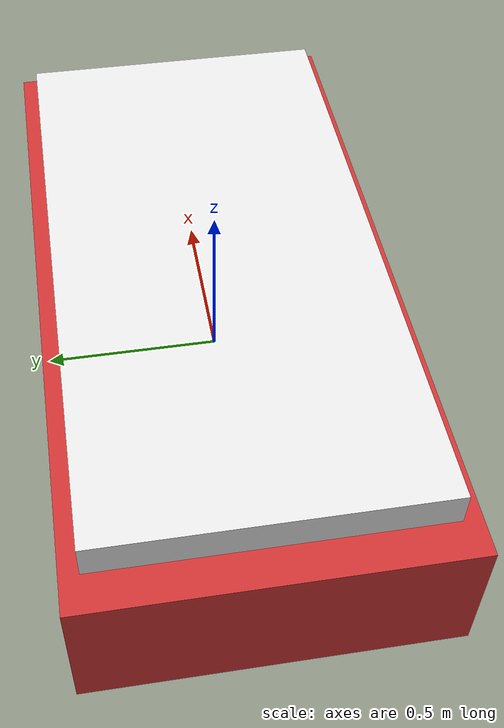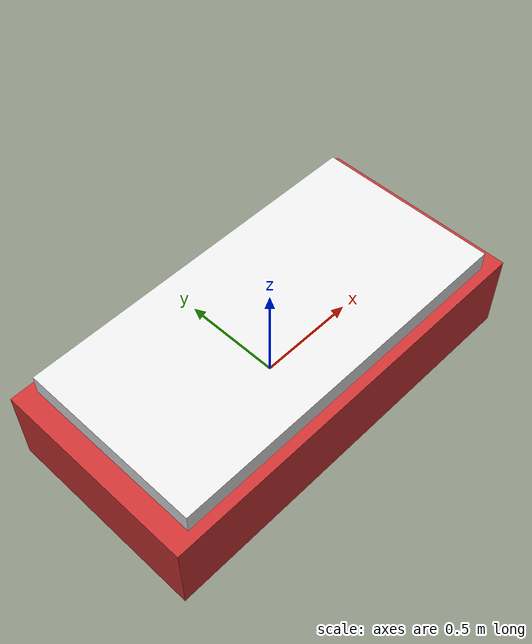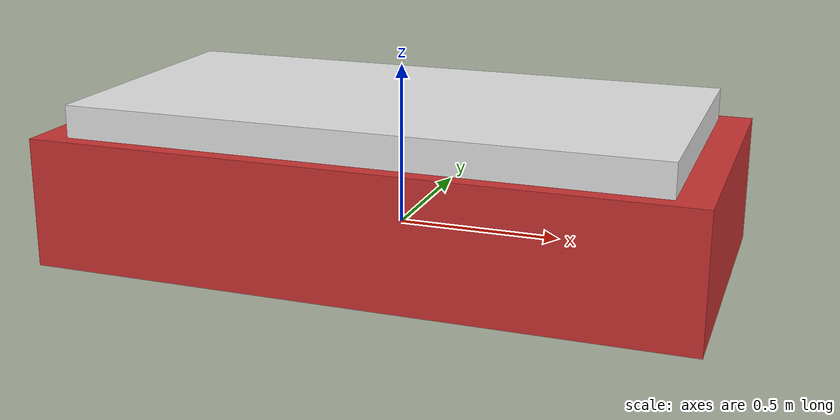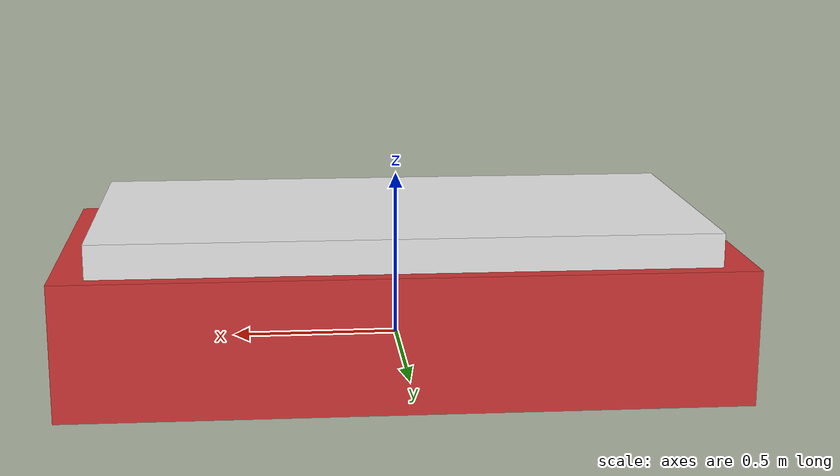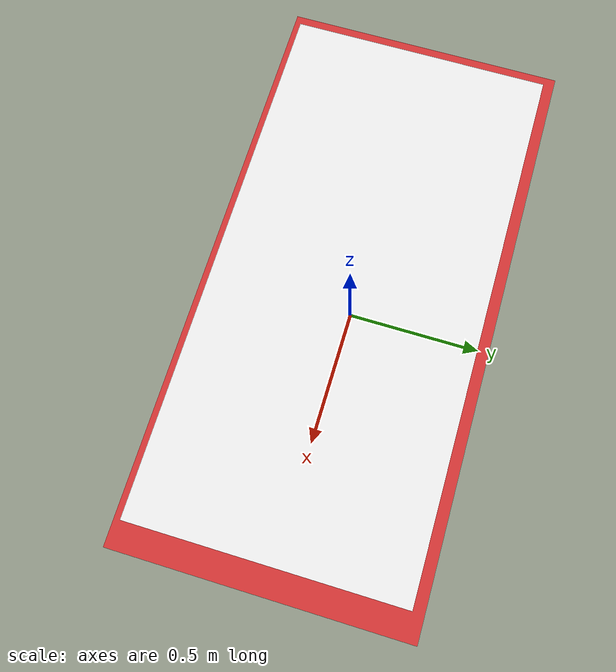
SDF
<?xml version="1.0" ?>
<sdf version="1.6">
  <model name="simple_boat">
    <pose>0 0 0.1 0 0 0</pose>

    <link name="base_link">
      <inertial>
        <mass>50.0</mass>
        <inertia>
          <ixx>8.33</ixx>
          <ixy>0</ixy>
          <ixz>0</ixz>
          <iyy>8.33</iyy>
          <iyz>0</iyz>
          <izz>8.33</izz>
        </inertia>
      </inertial>

      <!-- Hull visual -->
      <visual name="hull_visual">
        <geometry>
          <box>
            <size>2.0 1.0 0.4</size>
          </box>
        </geometry>
        <material>
          <ambient>0.8 0.2 0.2 1.0</ambient>
          <diffuse>0.8 0.2 0.2 1.0</diffuse>
          <specular>0.5 0.5 0.5 1.0</specular>
        </material>
      </visual>

      <!-- Deck visual -->
      <visual name="deck_visual">
        <pose>0 0 0.25 0 0 0</pose>
        <geometry>
          <box>
            <size>1.8 0.9 0.1</size>
          </box>
        </geometry>
        <material>
          <ambient>0.9 0.9 0.9 1.0</ambient>
          <diffuse>0.9 0.9 0.9 1.0</diffuse>
          <specular>0.3 0.3 0.3 1.0</specular>
        </material>
      </visual>

      <!-- Collision -->
      <collision name="collision">
        <geometry>
          <box>
            <size>2.0 1.0 0.4</size>
          </box>
        </geometry>
      </collision>
    </link>

    <!-- Simple buoyancy plugin (Fortress naming) -->
    <plugin filename="ignition-gazebo-buoyancy-system" name="ignition::gazebo::systems::Buoyancy">
      <uniform_fluid_density>1000</uniform_fluid_density>
    </plugin>

  </model>
</sdf>
